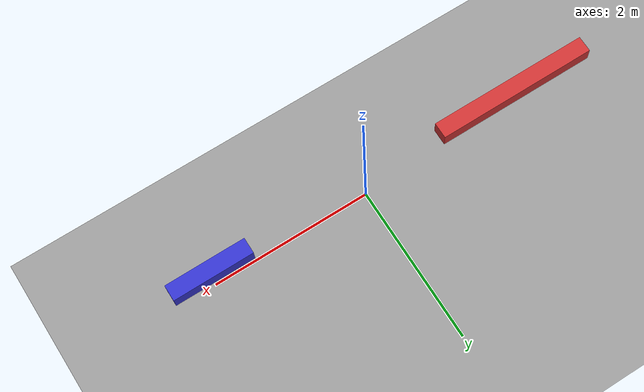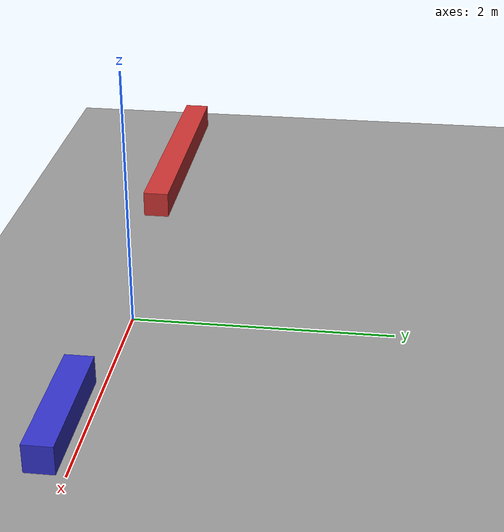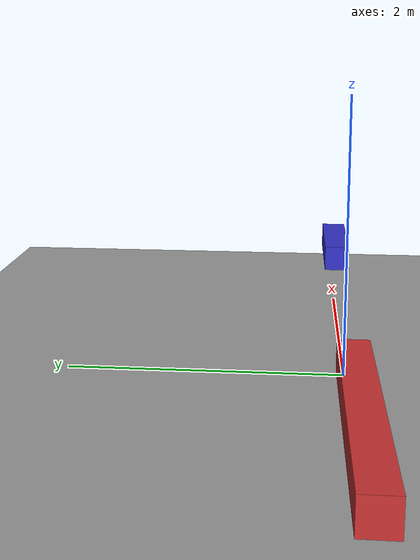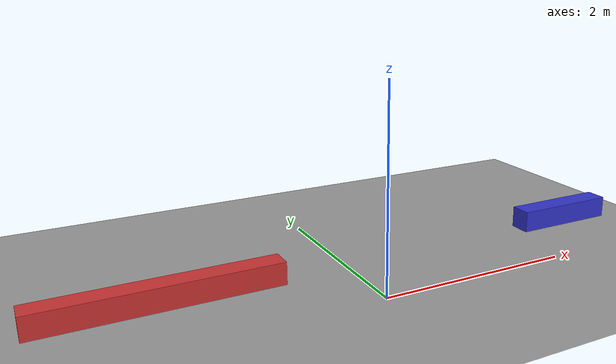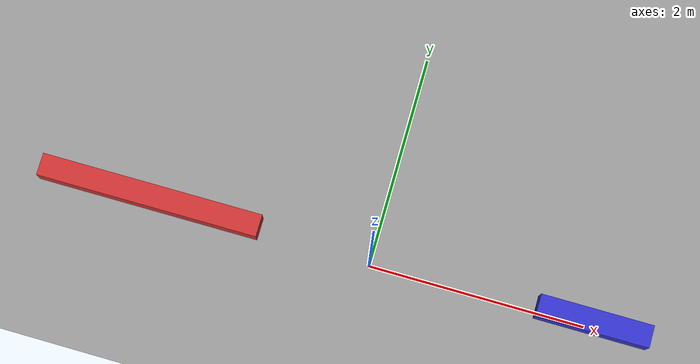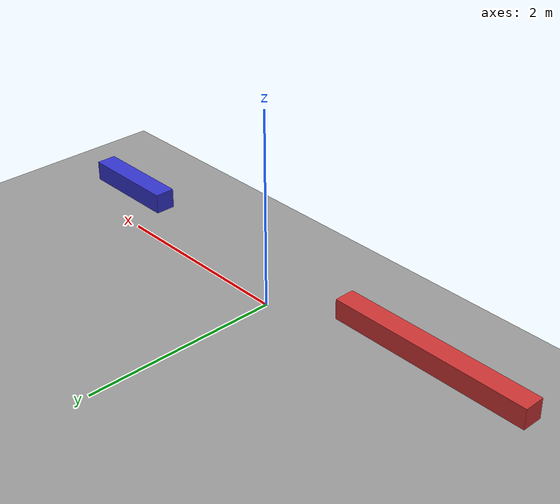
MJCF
<mujoco>
  <option gravity="0 0 -9.81" />
  <worldbody>
    <body name="object_3" pos="0 0 0">
      <geom type="plane" size="20 20 0.1" rgba="0.6 0.6 0.6 1" />
    </body>
    <body name="object_1" pos="-2 0 0.5">
      <geom type="box" size="1 0.1 0.1" mass="1" rgba="0.8 0.2 0.2 1" />
      <joint type="hinge" axis="0 0 1" name="object_1_joint" />
    </body>
    <body name="object_2" pos="2 0 0.5">
      <geom type="box" size="0.5 0.1 0.1" mass="1" rgba="0.2 0.2 0.8 1" />
      <joint type="hinge" axis="0 0 1" name="object_2_joint" />
    </body>
    <body name="object_4" pos="0 0 2" />
  </worldbody>
</mujoco>
